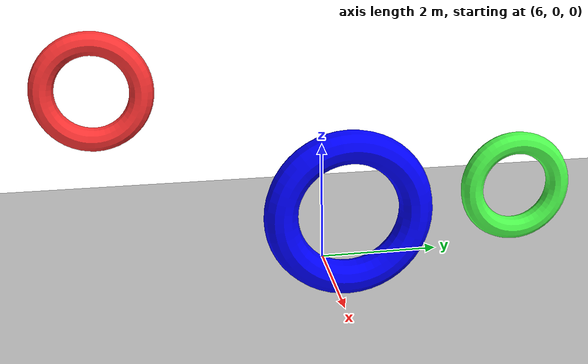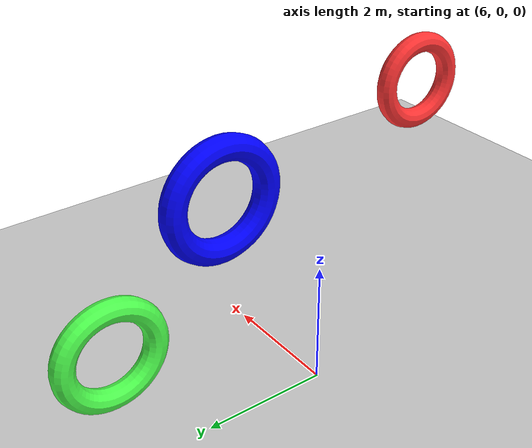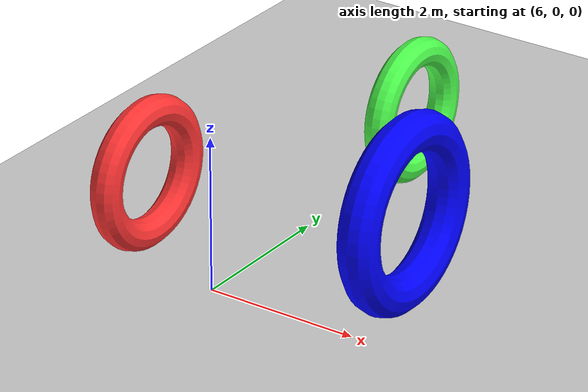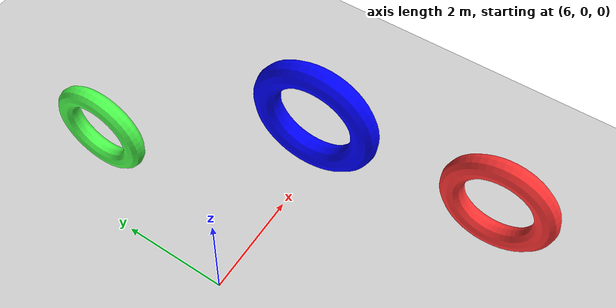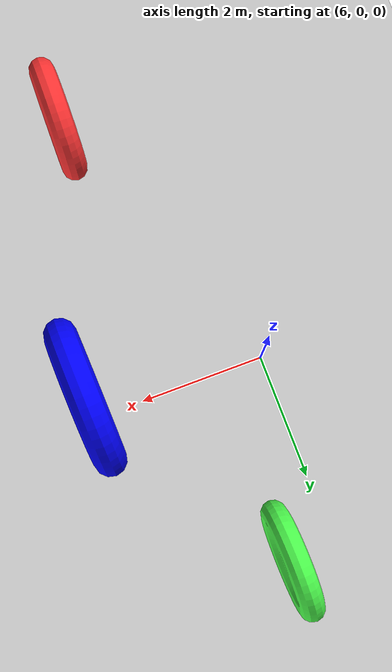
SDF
<sdf version="1.7">
 <world name="donut_world">
  <light name="sun" type="directional">
   <pose>0 0 10 0 -0 0</pose>
   <diffuse>0.8 0.8 0.8 1</diffuse>
   <specular>0.2 0.2 0.2 1</specular>
   <attenuation>
    <range>1000</range>
    <constant>0.9</constant>
    <linear>0.01</linear>
    <quadratic>0.001</quadratic>
   </attenuation>
   <direction>-0.5 0.1 -0.9</direction>
   <spot><inner_angle>0</inner_angle><outer_angle>0</outer_angle><falloff>0</falloff></spot>
  </light>
  <model name="ground_plane">
   <static>1</static>
   <link name="link">
    <collision name="collision">
     <geometry><plane><normal>0 0 1</normal><size>100 100</size></plane></geometry>
    </collision>
    <visual name="visual">
     <geometry><plane><normal>0 0 1</normal><size>100 100</size></plane></geometry>
     <material>
      <script><uri>file://media/materials/scripts/gazebo.material</uri><name>Gazebo/Grey</name></script>
     </material>
    </visual>
   </link>
  </model>
  <model name="donut_green">
   <static>1</static>
   <pose>6.79468 3.09263 1.36946 0 -0 1.5863</pose>
   <link name="link">
    <visual name="visual">
     <geometry>
      <mesh>
       <uri>file:///root/DockerFiles/donuts/donut_green/meshes/torus.dae</uri>
       <scale>1.24926 1.24926 1.24926</scale>
      </mesh>
     </geometry>
     <material><ambient>0.2 0.9 0.2 1</ambient><diffuse>0.3 1 0.3 1</diffuse></material>
    </visual>
    <collision name="collision">
     <geometry>
      <mesh>
       <uri>file:///root/DockerFiles/donuts/donut_green/meshes/torus.dae</uri>
       <scale>1.24926 1.24926 1.24926</scale>
      </mesh>
     </geometry>
    </collision>
   </link>
  </model>
  <model name="donut_blue">
   <static>1</static>
   <pose>8.77423 -0.109163 1.88071 0.004489 -0 -1.54014</pose>
   <link name="link">
    <visual name="visual">
     <geometry>
      <mesh>
       <uri>file:///root/DockerFiles/donuts/donut_blue/meshes/torus.dae</uri>
       <scale>1.63629 1.63629 1.63629</scale>
      </mesh>
     </geometry>
     <material><ambient>0 0 0.8 1</ambient><diffuse>0 0 1 1</diffuse></material>
    </visual>
    <collision name="collision">
     <geometry>
      <mesh>
       <uri>file:///root/DockerFiles/donuts/donut_blue/meshes/torus.dae</uri>
       <scale>1.63629 1.63629 1.63629</scale>
      </mesh>
     </geometry>
    </collision>
   </link>
  </model>
  <model name="donut_red">
   <static>1</static>
   <pose>7.79312 -3.54357 3.52753 0 0 -1.58924</pose>
   <link name="link">
    <visual name="visual">
     <geometry>
      <mesh>
       <uri>file:///root/DockerFiles/donuts/donut_red/meshes/torus.dae</uri>
       <scale>1.15117 1.15117 1.15117</scale>
      </mesh>
     </geometry>
     <material><ambient>0.9 0.1 0.1 1</ambient><diffuse>1 0.2 0.2 1</diffuse></material>
    </visual>
    <collision name="collision">
     <geometry>
      <mesh>
       <uri>file:///root/DockerFiles/donuts/donut_red/meshes/torus.dae</uri>
       <scale>1.15117 1.15117 1.15117</scale>
      </mesh>
     </geometry>
    </collision>
   </link>
  </model>
  <plugin name="gazebo_ros_init" filename="libgazebo_ros_init.so"/>
  <plugin name="gazebo_ros_factory" filename="libgazebo_ros_factory.so"/>
  <plugin name="gazebo_ros_state" filename="libgazebo_ros_state.so">
   <ros><namespace>/gazebo</namespace></ros>
   <update_rate>100</update_rate>
  </plugin>
  <scene><ambient>0.4 0.4 0.4 1</ambient><background>0.7 0.7 0.7 1</background><shadows>1</shadows></scene>
  <physics type="ode">
   <max_step_size>0.001</max_step_size>
   <real_time_factor>1</real_time_factor>
   <real_time_update_rate>1000</real_time_update_rate>
  </physics>
  <gravity>0 0 0</gravity>
  <magnetic_field>6e-06 2.3e-05 -4.2e-05</magnetic_field>
  <atmosphere type="adiabatic"/>
  <spherical_coordinates>
   <surface_model>EARTH_WGS84</surface_model>
   <latitude_deg>0</latitude_deg>
   <longitude_deg>0</longitude_deg>
   <elevation>0</elevation>
   <heading_deg>0</heading_deg>
  </spherical_coordinates>
 </world>
</sdf>
